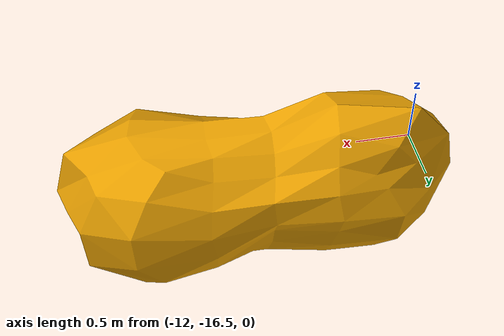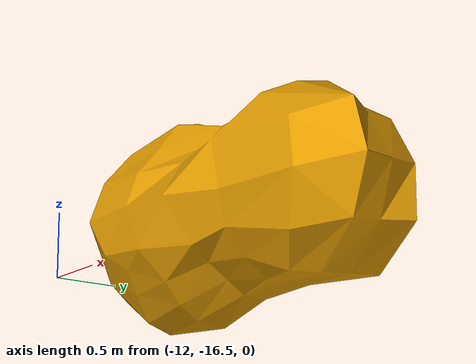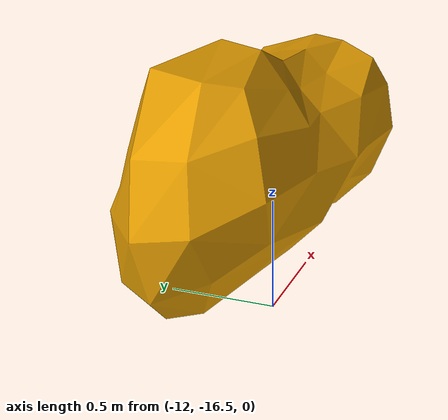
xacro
<robot name="robot">
  <link name="terrain_v6_rock_6_001_link">
    <inertial>
      <origin xyz="0 0 0" rpy="0 0 0" />
      <mass value="1" />
      <inertia ixx="1" ixy="0" ixz="0" iyy="1" iyz="0" izz="1" />
    </inertial>
    <visual>
      <origin xyz="0 0 0" rpy="0 0 0" />
      <geometry>
        <mesh filename="package://custom_gazebo_world/world_type/hard_world/meshes/terrain_v6_rock_6_001.dae" />
      </geometry>
    </visual>
    <collision>
      <origin xyz="0 0 0" rpy="0 0 0" />
      <geometry>
        <mesh filename="package://custom_gazebo_world/world_type/hard_world/meshes/terrain_v6_rock_6_001_collision.stl" />
      </geometry>
    </collision>
  </link>

  <gazebo> <static>true</static></gazebo>
</robot>
